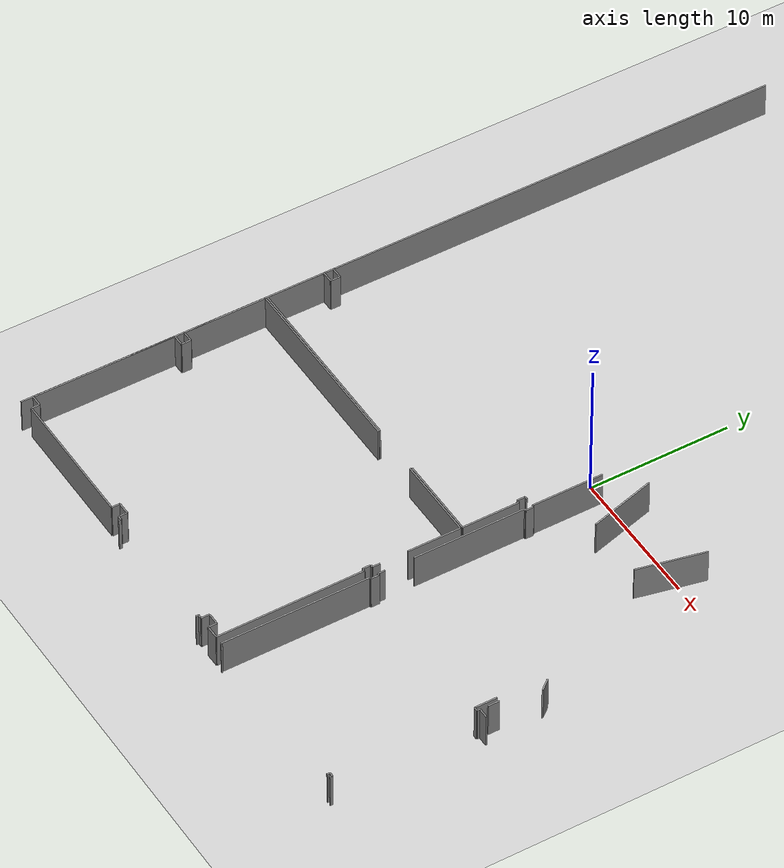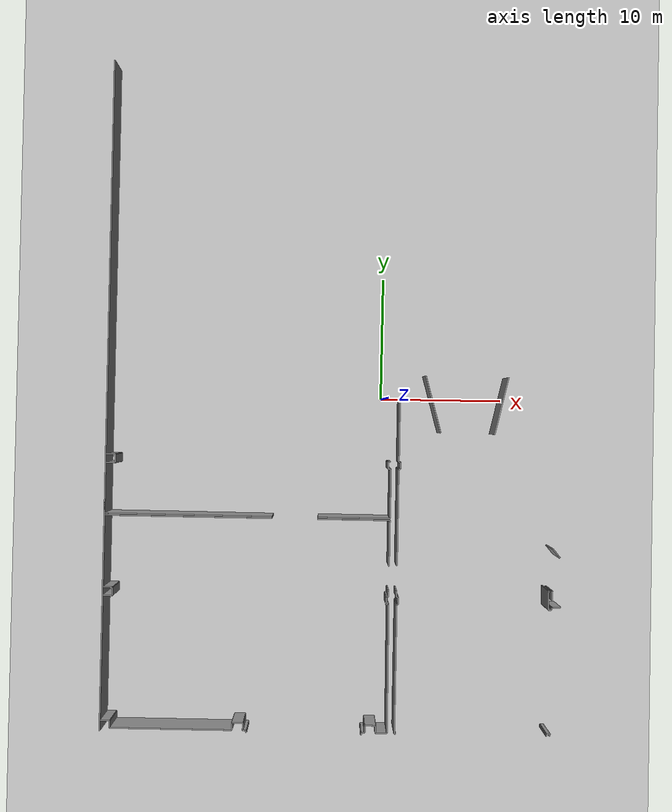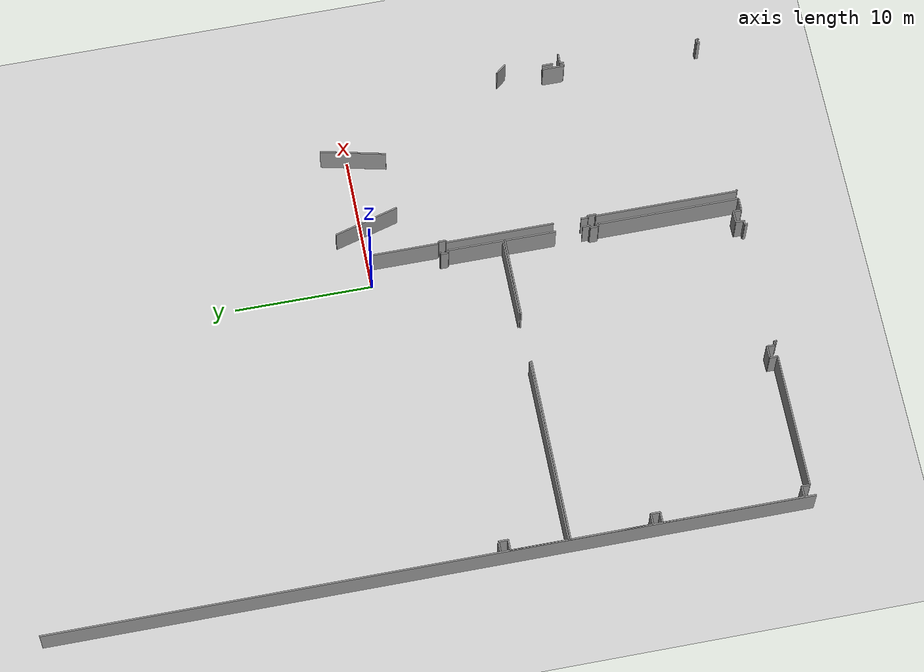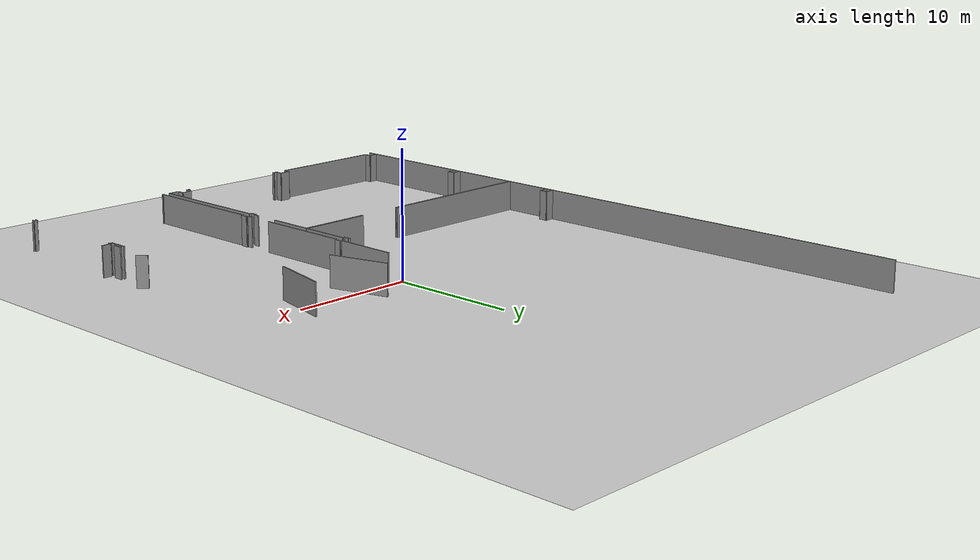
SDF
<sdf version="1.6">
 <world name="default">
  <model name="ground_plane">
   <static>1</static>
   <link name="link">
    <collision name="collision">
     <geometry><plane><normal>0 0 1</normal><size>100 100</size></plane></geometry>
     <surface><friction><ode><mu>100</mu><mu2>50</mu2></ode></friction></surface>
    </collision>
    <visual name="visual">
     <cast_shadows>0</cast_shadows>
     <geometry><plane><normal>0 0 1</normal><size>100 100</size></plane></geometry>
     <material>
      <script><uri>file://media/materials/scripts/gazebo.material</uri><name>Gazebo/Grey</name></script>
     </material>
    </visual>
   </link>
  </model>
  <model name="0510032322">
   <static>1</static>
   <link name="Wall_25">
    <collision name="Wall_25_Collision">
     <geometry><box><size>0.806026795631 0.1 2.5</size></box></geometry>
     <pose>0.403013397815 0 1.25 0 0 0</pose>
    </collision>
    <visual name="Wall_25_Visual">
     <pose>0.403013397815 0 1.25 0 0 0</pose>
     <geometry><box><size>0.806026795631 0.1 2.5</size></box></geometry>
     <material>
      <script><uri>file://media/materials/scripts/gazebo.material</uri><name>Gazebo/Grey</name></script>
      <ambient>1 1 1 1</ambient>
     </material>
    </visual>
    <pose>0.0 -32.2993342346 0 0 0 0.0</pose>
   </link>
   <link name="Wall_26">
    <collision name="Wall_26_Collision">
     <geometry><box><size>0.684424642841 0.1 2.5</size></box></geometry>
     <pose>0.342212321421 0 1.25 0 0 0</pose>
    </collision>
    <visual name="Wall_26_Visual">
     <pose>0.342212321421 0 1.25 0 0 0</pose>
     <geometry><box><size>0.684424642841 0.1 2.5</size></box></geometry>
     <material>
      <script><uri>file://media/materials/scripts/gazebo.material</uri><name>Gazebo/Grey</name></script>
      <ambient>1 1 1 1</ambient>
     </material>
    </visual>
    <pose>0.806026795631 -32.2993342346 0 0 0 -1.57079632679</pose>
   </link>
   <link name="Wall_27">
    <collision name="Wall_27_Collision">
     <geometry><box><size>0.801330261546 0.1 2.5</size></box></geometry>
     <pose>0.400665130773 0 1.25 0 0 0</pose>
    </collision>
    <visual name="Wall_27_Visual">
     <pose>0.400665130773 0 1.25 0 0 0</pose>
     <geometry><box><size>0.801330261546 0.1 2.5</size></box></geometry>
     <material>
      <script><uri>file://media/materials/scripts/gazebo.material</uri><name>Gazebo/Grey</name></script>
      <ambient>1 1 1 1</ambient>
     </material>
    </visual>
    <pose>0.806026795631 -32.9837588774 0 0 0 3.14159265359</pose>
   </link>
   <link name="Wall_28">
    <collision name="Wall_28_Collision">
     <geometry><box><size>4.13701186192 0.1 2.5</size></box></geometry>
     <pose>2.06850593096 0 1.25 0 0 0</pose>
    </collision>
    <visual name="Wall_28_Visual">
     <pose>2.06850593096 0 1.25 0 0 0</pose>
     <geometry><box><size>4.13701186192 0.1 2.5</size></box></geometry>
     <material>
      <script><uri>file://media/materials/scripts/gazebo.material</uri><name>Gazebo/Grey</name></script>
      <ambient>1 1 1 1</ambient>
     </material>
    </visual>
    <pose>0.00469653408478 -32.9837588774 0 0 0 -1.57079632679</pose>
   </link>
   <link name="Wall_29">
    <collision name="Wall_29_Collision">
     <geometry><box><size>13.6552683465 0.1 2.5</size></box></geometry>
     <pose>6.82763417323 0 1.25 0 0 0</pose>
    </collision>
    <visual name="Wall_29_Visual">
     <pose>6.82763417323 0 1.25 0 0 0</pose>
     <geometry><box><size>13.6552683465 0.1 2.5</size></box></geometry>
     <material>
      <script><uri>file://media/materials/scripts/gazebo.material</uri><name>Gazebo/Grey</name></script>
      <ambient>1 1 1 1</ambient>
     </material>
    </visual>
    <pose>0.00469653408478 -37.1207707393 0 0 0 -0.00216586695855</pose>
   </link>
   <link name="Wall_30">
    <collision name="Wall_30_Collision">
     <geometry><box><size>0.938164416773 0.1 2.5</size></box></geometry>
     <pose>0.469082208386 0 1.25 0 0 0</pose>
    </collision>
    <visual name="Wall_30_Visual">
     <pose>0.469082208386 0 1.25 0 0 0</pose>
     <geometry><box><size>0.938164416773 0.1 2.5</size></box></geometry>
     <material>
      <script><uri>file://media/materials/scripts/gazebo.material</uri><name>Gazebo/Grey</name></script>
      <ambient>1 1 1 1</ambient>
     </material>
    </visual>
    <pose>23.3180378642 -54.5016279203 0 0 0 3.14159265359</pose>
   </link>
   <link name="Wall_31">
    <collision name="Wall_31_Collision">
     <geometry><box><size>0.594301961755 0.1 2.5</size></box></geometry>
     <pose>0.297150980877 0 1.25 0 0 0</pose>
    </collision>
    <visual name="Wall_31_Visual">
     <pose>0.297150980877 0 1.25 0 0 0</pose>
     <geometry><box><size>0.594301961755 0.1 2.5</size></box></geometry>
     <material>
      <script><uri>file://media/materials/scripts/gazebo.material</uri><name>Gazebo/Grey</name></script>
      <ambient>1 1 1 1</ambient>
     </material>
    </visual>
    <pose>22.3798734474 -54.5016279203 0 0 0 1.57079632679</pose>
   </link>
   <link name="Wall_32">
    <collision name="Wall_32_Collision">
     <geometry><box><size>0.86733560544 0.1 2.5</size></box></geometry>
     <pose>0.43366780272 0 1.25 0 0 0</pose>
    </collision>
    <visual name="Wall_32_Visual">
     <pose>0.43366780272 0 1.25 0 0 0</pose>
     <geometry><box><size>0.86733560544 0.1 2.5</size></box></geometry>
     <material>
      <script><uri>file://media/materials/scripts/gazebo.material</uri><name>Gazebo/Grey</name></script>
      <ambient>1 1 1 1</ambient>
     </material>
    </visual>
    <pose>22.3798734474 -53.9073259585 0 0 0 3.14159265359</pose>
   </link>
   <link name="Wall_33">
    <collision name="Wall_33_Collision">
     <geometry><box><size>0.592651828158 0.1 2.5</size></box></geometry>
     <pose>0.296325914079 0 1.25 0 0 0</pose>
    </collision>
    <visual name="Wall_33_Visual">
     <pose>0.296325914079 0 1.25 0 0 0</pose>
     <geometry><box><size>0.592651828158 0.1 2.5</size></box></geometry>
     <material>
      <script><uri>file://media/materials/scripts/gazebo.material</uri><name>Gazebo/Grey</name></script>
      <ambient>1 1 1 1</ambient>
     </material>
    </visual>
    <pose>21.512537842 -53.9073259585 0 0 0 -1.57079632679</pose>
   </link>
   <link name="Wall_34">
    <collision name="Wall_34_Collision">
     <geometry><box><size>0.291692846671 0.1 2.5</size></box></geometry>
     <pose>0.145846423335 0 1.25 0 0 0</pose>
    </collision>
    <visual name="Wall_34_Visual">
     <pose>0.145846423335 0 1.25 0 0 0</pose>
     <geometry><box><size>0.291692846671 0.1 2.5</size></box></geometry>
     <material>
      <script><uri>file://media/materials/scripts/gazebo.material</uri><name>Gazebo/Grey</name></script>
      <ambient>1 1 1 1</ambient>
     </material>
    </visual>
    <pose>21.512537842 -54.4999777867 0 0 0 3.14159265359</pose>
   </link>
   <link name="Wall_35">
    <collision name="Wall_35_Collision">
     <geometry><box><size>0.195223497902 0.1 2.5</size></box></geometry>
     <pose>0.0976117489512 0 1.25 0 0 0</pose>
    </collision>
    <visual name="Wall_35_Visual">
     <pose>0.0976117489512 0 1.25 0 0 0</pose>
     <geometry><box><size>0.195223497902 0.1 2.5</size></box></geometry>
     <material>
      <script><uri>file://media/materials/scripts/gazebo.material</uri><name>Gazebo/Grey</name></script>
      <ambient>1 1 1 1</ambient>
     </material>
    </visual>
    <pose>21.2208449953 -54.4999777867 0 0 0 -1.57079632679</pose>
   </link>
   <link name="Wall_36">
    <collision name="Wall_36_Collision">
     <geometry><box><size>0.190907763879 0.1 2.5</size></box></geometry>
     <pose>0.0954538819393 0 1.25 0 0 0</pose>
    </collision>
    <visual name="Wall_36_Visual">
     <pose>0.0954538819393 0 1.25 0 0 0</pose>
     <geometry><box><size>0.190907763879 0.1 2.5</size></box></geometry>
     <material>
      <script><uri>file://media/materials/scripts/gazebo.material</uri><name>Gazebo/Grey</name></script>
      <ambient>1 1 1 1</ambient>
     </material>
    </visual>
    <pose>11.9015251042 -54.6952012846 0 0 0 1.57079632679</pose>
   </link>
   <link name="Wall_37">
    <collision name="Wall_37_Collision">
     <geometry><box><size>0.286361645818 0.1 2.5</size></box></geometry>
     <pose>0.143180822909 0 1.25 0 0 0</pose>
    </collision>
    <visual name="Wall_37_Visual">
     <pose>0.143180822909 0 1.25 0 0 0</pose>
     <geometry><box><size>0.286361645818 0.1 2.5</size></box></geometry>
     <material>
      <script><uri>file://media/materials/scripts/gazebo.material</uri><name>Gazebo/Grey</name></script>
      <ambient>1 1 1 1</ambient>
     </material>
    </visual>
    <pose>11.9015251042 -54.5042935207 0 0 0 3.14159265359</pose>
   </link>
   <link name="Wall_38">
    <collision name="Wall_38_Collision">
     <geometry><box><size>0.59760222895 0.1 2.5</size></box></geometry>
     <pose>0.298801114475 0 1.25 0 0 0</pose>
    </collision>
    <visual name="Wall_38_Visual">
     <pose>0.298801114475 0 1.25 0 0 0</pose>
     <geometry><box><size>0.59760222895 0.1 2.5</size></box></geometry>
     <material>
      <script><uri>file://media/materials/scripts/gazebo.material</uri><name>Gazebo/Grey</name></script>
      <ambient>1 1 1 1</ambient>
     </material>
    </visual>
    <pose>11.6151634584 -54.5042935207 0 0 0 1.57079632679</pose>
   </link>
   <link name="Wall_39">
    <collision name="Wall_39_Collision">
     <geometry><box><size>0.888025742084 0.1 2.5</size></box></geometry>
     <pose>0.444012871042 0 1.25 0 0 0</pose>
    </collision>
    <visual name="Wall_39_Visual">
     <pose>0.444012871042 0 1.25 0 0 0</pose>
     <geometry><box><size>0.888025742084 0.1 2.5</size></box></geometry>
     <material>
      <script><uri>file://media/materials/scripts/gazebo.material</uri><name>Gazebo/Grey</name></script>
      <ambient>1 1 1 1</ambient>
     </material>
    </visual>
    <pose>11.6151634584 -53.9066912917 0 0 0 3.14159265359</pose>
   </link>
   <link name="Wall_40">
    <collision name="Wall_40_Collision">
     <geometry><box><size>0.580973959622 0.1 2.5</size></box></geometry>
     <pose>0.290486979811 0 1.25 0 0 0</pose>
    </collision>
    <visual name="Wall_40_Visual">
     <pose>0.290486979811 0 1.25 0 0 0</pose>
     <geometry><box><size>0.580973959622 0.1 2.5</size></box></geometry>
     <material>
      <script><uri>file://media/materials/scripts/gazebo.material</uri><name>Gazebo/Grey</name></script>
      <ambient>1 1 1 1</ambient>
     </material>
    </visual>
    <pose>10.7271377163 -53.9066912917 0 0 0 -1.57079632679</pose>
   </link>
   <link name="Wall_41">
    <collision name="Wall_41_Collision">
     <geometry><box><size>9.91362185285 0.1 2.5</size></box></geometry>
     <pose>4.95681092642 0 1.25 0 0 0</pose>
    </collision>
    <visual name="Wall_41_Visual">
     <pose>4.95681092642 0 1.25 0 0 0</pose>
     <geometry><box><size>9.91362185285 0.1 2.5</size></box></geometry>
     <material>
      <script><uri>file://media/materials/scripts/gazebo.material</uri><name>Gazebo/Grey</name></script>
      <ambient>1 1 1 1</ambient>
     </material>
    </visual>
    <pose>10.7271377163 -54.4876652514 0 0 0 3.14159265359</pose>
   </link>
   <link name="Wall_42">
    <collision name="Wall_42_Collision">
     <geometry><box><size>0.579450759379 0.1 2.5</size></box></geometry>
     <pose>0.289725379689 0 1.25 0 0 0</pose>
    </collision>
    <visual name="Wall_42_Visual">
     <pose>0.289725379689 0 1.25 0 0 0</pose>
     <geometry><box><size>0.579450759379 0.1 2.5</size></box></geometry>
     <material>
      <script><uri>file://media/materials/scripts/gazebo.material</uri><name>Gazebo/Grey</name></script>
      <ambient>1 1 1 1</ambient>
     </material>
    </visual>
    <pose>0.813515863496 -54.4876652514 0 0 0 1.57079632679</pose>
   </link>
   <link name="Wall_43">
    <collision name="Wall_43_Collision">
     <geometry><box><size>0.800949461485 0.1 2.5</size></box></geometry>
     <pose>0.400474730743 0 1.25 0 0 0</pose>
    </collision>
    <visual name="Wall_43_Visual">
     <pose>0.400474730743 0 1.25 0 0 0</pose>
     <geometry><box><size>0.800949461485 0.1 2.5</size></box></geometry>
     <material>
      <script><uri>file://media/materials/scripts/gazebo.material</uri><name>Gazebo/Grey</name></script>
      <ambient>1 1 1 1</ambient>
     </material>
    </visual>
    <pose>0.813515863496 -53.908214492 0 0 0 3.14159265359</pose>
   </link>
   <link name="Wall_44">
    <collision name="Wall_44_Collision">
     <geometry><box><size>10.1210309527 0.1 2.5</size></box></geometry>
     <pose>5.06051547635 0 1.25 0 0 0</pose>
    </collision>
    <visual name="Wall_44_Visual">
     <pose>5.06051547635 0 1.25 0 0 0</pose>
     <geometry><box><size>10.1210309527 0.1 2.5</size></box></geometry>
     <material>
      <script><uri>file://media/materials/scripts/gazebo.material</uri><name>Gazebo/Grey</name></script>
      <ambient>1 1 1 1</ambient>
     </material>
    </visual>
    <pose>0.0125664020106 -53.908214492 0 0 0 1.57079632679</pose>
   </link>
   <link name="Wall_45">
    <collision name="Wall_45_Collision">
     <geometry><box><size>0.793079593559 0.1 2.5</size></box></geometry>
     <pose>0.39653979678 0 1.25 0 0 0</pose>
    </collision>
    <visual name="Wall_45_Visual">
     <pose>0.39653979678 0 1.25 0 0 0</pose>
     <geometry><box><size>0.793079593559 0.1 2.5</size></box></geometry>
     <material>
      <script><uri>file://media/materials/scripts/gazebo.material</uri><name>Gazebo/Grey</name></script>
      <ambient>1 1 1 1</ambient>
     </material>
    </visual>
    <pose>0.0125664020106 -43.7871835393 0 0 0 0.0</pose>
   </link>
   <link name="Wall_46">
    <collision name="Wall_46_Collision">
     <geometry><box><size>0.674904641318 0.1 2.5</size></box></geometry>
     <pose>0.337452320659 0 1.25 0 0 0</pose>
    </collision>
    <visual name="Wall_46_Visual">
     <pose>0.337452320659 0 1.25 0 0 0</pose>
     <geometry><box><size>0.674904641318 0.1 2.5</size></box></geometry>
     <material>
      <script><uri>file://media/materials/scripts/gazebo.material</uri><name>Gazebo/Grey</name></script>
      <ambient>1 1 1 1</ambient>
     </material>
    </visual>
    <pose>0.80564599557 -43.7871835393 0 0 0 1.57079632679</pose>
   </link>
   <link name="Wall_47">
    <collision name="Wall_47_Collision">
     <geometry><box><size>0.791048659901 0.1 2.5</size></box></geometry>
     <pose>0.395524329951 0 1.25 0 0 0</pose>
    </collision>
    <visual name="Wall_47_Visual">
     <pose>0.395524329951 0 1.25 0 0 0</pose>
     <geometry><box><size>0.791048659901 0.1 2.5</size></box></geometry>
     <material>
      <script><uri>file://media/materials/scripts/gazebo.material</uri><name>Gazebo/Grey</name></script>
      <ambient>1 1 1 1</ambient>
     </material>
    </visual>
    <pose>0.80564599557 -43.112278898 0 0 0 3.14159265359</pose>
   </link>
   <link name="Wall_48">
    <collision name="Wall_48_Collision">
     <geometry><box><size>5.85822813732 0.1 2.5</size></box></geometry>
     <pose>2.92911406866 0 1.25 0 0 0</pose>
    </collision>
    <visual name="Wall_48_Visual">
     <pose>2.92911406866 0 1.25 0 0 0</pose>
     <geometry><box><size>5.85822813732 0.1 2.5</size></box></geometry>
     <material>
      <script><uri>file://media/materials/scripts/gazebo.material</uri><name>Gazebo/Grey</name></script>
      <ambient>1 1 1 1</ambient>
     </material>
    </visual>
    <pose>0.0145973356689 -43.112278898 0 0 0 1.57079632679</pose>
   </link>
   <link name="Wall_49">
    <collision name="Wall_49_Collision">
     <geometry><box><size>13.6468587168 0.1 2.5</size></box></geometry>
     <pose>6.82342935842 0 1.25 0 0 0</pose>
    </collision>
    <visual name="Wall_49_Visual">
     <pose>6.82342935842 0 1.25 0 0 0</pose>
     <geometry><box><size>13.6468587168 0.1 2.5</size></box></geometry>
     <material>
      <script><uri>file://media/materials/scripts/gazebo.material</uri><name>Gazebo/Grey</name></script>
      <ambient>1 1 1 1</ambient>
     </material>
    </visual>
    <pose>0.0145973356689 -37.2540507606 0 0 0 0.0</pose>
   </link>
   <link name="Wall_50">
    <collision name="Wall_50_Collision">
     <geometry><box><size>5.89922761054 0.1 2.5</size></box></geometry>
     <pose>2.94961380527 0 1.25 0 0 0</pose>
    </collision>
    <visual name="Wall_50_Visual">
     <pose>2.94961380527 0 1.25 0 0 0</pose>
     <geometry><box><size>5.89922761054 0.1 2.5</size></box></geometry>
     <material>
      <script><uri>file://media/materials/scripts/gazebo.material</uri><name>Gazebo/Grey</name></script>
      <ambient>1 1 1 1</ambient>
     </material>
    </visual>
    <pose>17.3469659755 -37.2540507606 0 0 0 0.0</pose>
   </link>
   <link name="Wall_51">
    <collision name="Wall_51_Collision">
     <geometry><box><size>3.73907579825 0.1 2.5</size></box></geometry>
     <pose>1.86953789913 0 1.25 0 0 0</pose>
    </collision>
    <visual name="Wall_51_Visual">
     <pose>1.86953789913 0 1.25 0 0 0</pose>
     <geometry><box><size>3.73907579825 0.1 2.5</size></box></geometry>
     <material>
      <script><uri>file://media/materials/scripts/gazebo.material</uri><name>Gazebo/Grey</name></script>
      <ambient>1 1 1 1</ambient>
     </material>
    </visual>
    <pose>23.2461935861 -37.2540507606 0 0 0 -1.57079632679</pose>
   </link>
   <link name="Wall_52">
    <collision name="Wall_52_Collision">
     <geometry><box><size>0.529692884751 0.1 2.5</size></box></geometry>
     <pose>0.264846442375 0 1.25 0 0 0</pose>
    </collision>
    <visual name="Wall_52_Visual">
     <pose>0.264846442375 0 1.25 0 0 0</pose>
     <geometry><box><size>0.529692884751 0.1 2.5</size></box></geometry>
     <material>
      <script><uri>file://media/materials/scripts/gazebo.material</uri><name>Gazebo/Grey</name></script>
      <ambient>1 1 1 1</ambient>
     </material>
    </visual>
    <pose>23.2461935861 -42.9816644771 0 0 0 -1.57079632679</pose>
   </link>
   <link name="Wall_53">
    <collision name="Wall_53_Collision">
     <geometry><box><size>0.182022429124 0.1 2.5</size></box></geometry>
     <pose>0.0910112145618 0 1.25 0 0 0</pose>
    </collision>
    <visual name="Wall_53_Visual">
     <pose>0.0910112145618 0 1.25 0 0 0</pose>
     <geometry><box><size>0.182022429124 0.1 2.5</size></box></geometry>
     <material>
      <script><uri>file://media/materials/scripts/gazebo.material</uri><name>Gazebo/Grey</name></script>
      <ambient>1 1 1 1</ambient>
     </material>
    </visual>
    <pose>23.2461935861 -43.5113573618 0 0 0 3.14159265359</pose>
   </link>
   <link name="Wall_54">
    <collision name="Wall_54_Collision">
     <geometry><box><size>0.573357958404 0.1 2.5</size></box></geometry>
     <pose>0.286678979202 0 1.25 0 0 0</pose>
    </collision>
    <visual name="Wall_54_Visual">
     <pose>0.286678979202 0 1.25 0 0 0</pose>
     <geometry><box><size>0.573357958404 0.1 2.5</size></box></geometry>
     <material>
      <script><uri>file://media/materials/scripts/gazebo.material</uri><name>Gazebo/Grey</name></script>
      <ambient>1 1 1 1</ambient>
     </material>
    </visual>
    <pose>23.0641711569 -43.5113573618 0 0 0 -1.57079632679</pose>
   </link>
   <link name="Wall_55">
    <collision name="Wall_55_Collision">
     <geometry><box><size>0.195985098024 0.1 2.5</size></box></geometry>
     <pose>0.0979925490121 0 1.25 0 0 0</pose>
    </collision>
    <visual name="Wall_55_Visual">
     <pose>0.0979925490121 0 1.25 0 0 0</pose>
     <geometry><box><size>0.195985098024 0.1 2.5</size></box></geometry>
     <material>
      <script><uri>file://media/materials/scripts/gazebo.material</uri><name>Gazebo/Grey</name></script>
      <ambient>1 1 1 1</ambient>
     </material>
    </visual>
    <pose>23.0641711569 -44.0847153202 0 0 0 0.0</pose>
   </link>
   <link name="Wall_56">
    <collision name="Wall_56_Collision">
     <geometry><box><size>10.4170734085 0.1 2.5</size></box></geometry>
     <pose>5.20853670424 0 1.25 0 0 0</pose>
    </collision>
    <visual name="Wall_56_Visual">
     <pose>5.20853670424 0 1.25 0 0 0</pose>
     <geometry><box><size>10.4170734085 0.1 2.5</size></box></geometry>
     <material>
      <script><uri>file://media/materials/scripts/gazebo.material</uri><name>Gazebo/Grey</name></script>
      <ambient>1 1 1 1</ambient>
     </material>
    </visual>
    <pose>23.260156255 -44.0847153202 0 0 0 -1.56523988068</pose>
   </link>
   <link name="Wall_93">
    <collision name="Wall_93_Collision">
     <geometry><box><size>5.86520947177 0.1 2.5</size></box></geometry>
     <pose>2.93260473588 0 1.25 0 0 0</pose>
    </collision>
    <visual name="Wall_93_Visual">
     <pose>2.93260473588 0 1.25 0 0 0</pose>
     <geometry><box><size>5.86520947177 0.1 2.5</size></box></geometry>
     <material>
      <script><uri>file://media/materials/scripts/gazebo.material</uri><name>Gazebo/Grey</name></script>
      <ambient>1 1 1 1</ambient>
     </material>
    </visual>
    <pose>23.260156255 -37.1269904737 0 0 0 3.14159265359</pose>
   </link>
   <link name="Wall_101">
    <collision name="Wall_101_Collision">
     <geometry><box><size>0.194208031073 0.1 2.5</size></box></geometry>
     <pose>0.0971040155366 0 1.25 0 0 0</pose>
    </collision>
    <visual name="Wall_101_Visual">
     <pose>0.0971040155366 0 1.25 0 0 0</pose>
     <geometry><box><size>0.194208031073 0.1 2.5</size></box></geometry>
     <material>
      <script><uri>file://media/materials/scripts/gazebo.material</uri><name>Gazebo/Grey</name></script>
      <ambient>1 1 1 1</ambient>
     </material>
    </visual>
    <pose>23.2459397194 -32.5138516022 0 0 0 3.14159265359</pose>
   </link>
   <link name="Wall_102">
    <collision name="Wall_102_Collision">
     <geometry><box><size>0.57183475816 0.1 2.5</size></box></geometry>
     <pose>0.28591737908 0 1.25 0 0 0</pose>
    </collision>
    <visual name="Wall_102_Visual">
     <pose>0.28591737908 0 1.25 0 0 0</pose>
     <geometry><box><size>0.57183475816 0.1 2.5</size></box></geometry>
     <material>
      <script><uri>file://media/materials/scripts/gazebo.material</uri><name>Gazebo/Grey</name></script>
      <ambient>1 1 1 1</ambient>
     </material>
    </visual>
    <pose>23.0517316883 -32.5138516022 0 0 0 -1.57079632679</pose>
   </link>
   <link name="Wall_103">
    <collision name="Wall_103_Collision">
     <geometry><box><size>0.203981899304 0.1 2.5</size></box></geometry>
     <pose>0.101990949652 0 1.25 0 0 0</pose>
    </collision>
    <visual name="Wall_103_Visual">
     <pose>0.101990949652 0 1.25 0 0 0</pose>
     <geometry><box><size>0.203981899304 0.1 2.5</size></box></geometry>
     <material>
      <script><uri>file://media/materials/scripts/gazebo.material</uri><name>Gazebo/Grey</name></script>
      <ambient>1 1 1 1</ambient>
     </material>
    </visual>
    <pose>23.0517316883 -33.0856863604 0 0 0 0.0</pose>
   </link>
   <link name="Wall_104">
    <collision name="Wall_104_Collision">
     <geometry><box><size>4.04130655522 0.1 2.5</size></box></geometry>
     <pose>2.02065327761 0 1.25 0 0 0</pose>
    </collision>
    <visual name="Wall_104_Visual">
     <pose>2.02065327761 0 1.25 0 0 0</pose>
     <geometry><box><size>4.04130655522 0.1 2.5</size></box></geometry>
     <material>
      <script><uri>file://media/materials/scripts/gazebo.material</uri><name>Gazebo/Grey</name></script>
      <ambient>1 1 1 1</ambient>
     </material>
    </visual>
    <pose>23.2557135876 -33.0856863604 0 0 0 -1.56969701195</pose>
   </link>
   <link name="Wall_111">
    <collision name="Wall_111_Collision">
     <geometry><box><size>4.85428621968 0.1 2.5</size></box></geometry>
     <pose>2.42714310984 0 1.25 0 0 0</pose>
    </collision>
    <visual name="Wall_111_Visual">
     <pose>2.42714310984 0 1.25 0 0 0</pose>
     <geometry><box><size>4.85428621968 0.1 2.5</size></box></geometry>
     <material>
      <script><uri>file://media/materials/scripts/gazebo.material</uri><name>Gazebo/Grey</name></script>
      <ambient>1 1 1 1</ambient>
     </material>
    </visual>
    <pose>27.2612224951 -30.0792698793 0 0 0 1.84072698844</pose>
   </link>
   <link name="Wall_167">
    <collision name="Wall_167_Collision">
     <geometry><box><size>0.195604297963 0.1 2.5</size></box></geometry>
     <pose>0.0978021489817 0 1.25 0 0 0</pose>
    </collision>
    <visual name="Wall_167_Visual">
     <pose>0.0978021489817 0 1.25 0 0 0</pose>
     <geometry><box><size>0.195604297963 0.1 2.5</size></box></geometry>
     <material>
      <script><uri>file://media/materials/scripts/gazebo.material</uri><name>Gazebo/Grey</name></script>
      <ambient>1 1 1 1</ambient>
     </material>
    </visual>
    <pose>36.5447471805 -54.5089900548 0 0 0 1.57079632679</pose>
   </link>
   <link name="Wall_168">
    <collision name="Wall_168_Collision">
     <geometry><box><size>0.281538178379 0.1 2.5</size></box></geometry>
     <pose>0.14076908919 0 1.25 0 0 0</pose>
    </collision>
    <visual name="Wall_168_Visual">
     <pose>0.14076908919 0 1.25 0 0 0</pose>
     <geometry><box><size>0.281538178379 0.1 2.5</size></box></geometry>
     <material>
      <script><uri>file://media/materials/scripts/gazebo.material</uri><name>Gazebo/Grey</name></script>
      <ambient>1 1 1 1</ambient>
     </material>
    </visual>
    <pose>36.5447471805 -54.3133857568 0 0 0 3.14159265359</pose>
   </link>
   <link name="Wall_169">
    <collision name="Wall_169_Collision">
     <geometry><box><size>0.205124299487 0.1 2.5</size></box></geometry>
     <pose>0.102562149743 0 1.25 0 0 0</pose>
    </collision>
    <visual name="Wall_169_Visual">
     <pose>0.102562149743 0 1.25 0 0 0</pose>
     <geometry><box><size>0.205124299487 0.1 2.5</size></box></geometry>
     <material>
      <script><uri>file://media/materials/scripts/gazebo.material</uri><name>Gazebo/Grey</name></script>
      <ambient>1 1 1 1</ambient>
     </material>
    </visual>
    <pose>36.2632090021 -54.3133857568 0 0 0 -1.57079632679</pose>
   </link>
   <link name="Wall_170">
    <collision name="Wall_170_Collision">
     <geometry><box><size>0.111955217913 0.1 2.5</size></box></geometry>
     <pose>0.0559776089564 0 1.25 0 0 0</pose>
    </collision>
    <visual name="Wall_170_Visual">
     <pose>0.0559776089564 0 1.25 0 0 0</pose>
     <geometry><box><size>0.111955217913 0.1 2.5</size></box></geometry>
     <material>
      <script><uri>file://media/materials/scripts/gazebo.material</uri><name>Gazebo/Grey</name></script>
      <ambient>1 1 1 1</ambient>
     </material>
    </visual>
    <pose>24.028991578 -54.5185100563 0 0 0 3.14159265359</pose>
   </link>
   <link name="Wall_171">
    <collision name="Wall_171_Collision">
     <geometry><box><size>10.4191974004 0.1 2.5</size></box></geometry>
     <pose>5.2095987002 0 1.25 0 0 0</pose>
    </collision>
    <visual name="Wall_171_Visual">
     <pose>5.2095987002 0 1.25 0 0 0</pose>
     <geometry><box><size>10.4191974004 0.1 2.5</size></box></geometry>
     <material>
      <script><uri>file://media/materials/scripts/gazebo.material</uri><name>Gazebo/Grey</name></script>
      <ambient>1 1 1 1</ambient>
     </material>
    </visual>
    <pose>23.9170363601 -54.5185100563 0 0 0 1.57079632679</pose>
   </link>
   <link name="Wall_172">
    <collision name="Wall_172_Collision">
     <geometry><box><size>0.112462951327 0.1 2.5</size></box></geometry>
     <pose>0.0562314756637 0 1.25 0 0 0</pose>
    </collision>
    <visual name="Wall_172_Visual">
     <pose>0.0562314756637 0 1.25 0 0 0</pose>
     <geometry><box><size>0.112462951327 0.1 2.5</size></box></geometry>
     <material>
      <script><uri>file://media/materials/scripts/gazebo.material</uri><name>Gazebo/Grey</name></script>
      <ambient>1 1 1 1</ambient>
     </material>
    </visual>
    <pose>23.9170363601 -44.0993126559 0 0 0 0.0</pose>
   </link>
   <link name="Wall_173">
    <collision name="Wall_173_Collision">
     <geometry><box><size>0.602425696388 0.1 2.5</size></box></geometry>
     <pose>0.301212848194 0 1.25 0 0 0</pose>
    </collision>
    <visual name="Wall_173_Visual">
     <pose>0.301212848194 0 1.25 0 0 0</pose>
     <geometry><box><size>0.602425696388 0.1 2.5</size></box></geometry>
     <material>
      <script><uri>file://media/materials/scripts/gazebo.material</uri><name>Gazebo/Grey</name></script>
      <ambient>1 1 1 1</ambient>
     </material>
    </visual>
    <pose>24.0294993114 -44.0993126559 0 0 0 1.57079632679</pose>
   </link>
   <link name="Wall_174">
    <collision name="Wall_174_Collision">
     <geometry><box><size>0.13797655541 0.1 2.5</size></box></geometry>
     <pose>0.0689882777048 0 1.25 0 0 0</pose>
    </collision>
    <visual name="Wall_174_Visual">
     <pose>0.0689882777048 0 1.25 0 0 0</pose>
     <geometry><box><size>0.13797655541 0.1 2.5</size></box></geometry>
     <material>
      <script><uri>file://media/materials/scripts/gazebo.material</uri><name>Gazebo/Grey</name></script>
      <ambient>1 1 1 1</ambient>
     </material>
    </visual>
    <pose>24.0294993114 -43.4968869595 0 0 0 3.14159265359</pose>
   </link>
   <link name="Wall_175">
    <collision name="Wall_175_Collision">
     <geometry><box><size>0.50075208012 0.1 2.5</size></box></geometry>
     <pose>0.25037604006 0 1.25 0 0 0</pose>
    </collision>
    <visual name="Wall_175_Visual">
     <pose>0.25037604006 0 1.25 0 0 0</pose>
     <geometry><box><size>0.50075208012 0.1 2.5</size></box></geometry>
     <material>
      <script><uri>file://media/materials/scripts/gazebo.material</uri><name>Gazebo/Grey</name></script>
      <ambient>1 1 1 1</ambient>
     </material>
    </visual>
    <pose>23.891522756 -43.4968869595 0 0 0 1.57079632679</pose>
   </link>
   <link name="Wall_176">
    <collision name="Wall_176_Collision">
     <geometry><box><size>7.87405672652 0.1 2.5</size></box></geometry>
     <pose>3.93702836326 0 1.25 0 0 0</pose>
    </collision>
    <visual name="Wall_176_Visual">
     <pose>3.93702836326 0 1.25 0 0 0</pose>
     <geometry><box><size>7.87405672652 0.1 2.5</size></box></geometry>
     <material>
      <script><uri>file://media/materials/scripts/gazebo.material</uri><name>Gazebo/Grey</name></script>
      <ambient>1 1 1 1</ambient>
     </material>
    </visual>
    <pose>23.891522756 -40.9625356207 0 0 0 1.57079632679</pose>
   </link>
   <link name="Wall_177">
    <collision name="Wall_177_Collision">
     <geometry><box><size>0.145211756567 0.1 2.5</size></box></geometry>
     <pose>0.0726058782836 0 1.25 0 0 0</pose>
    </collision>
    <visual name="Wall_177_Visual">
     <pose>0.0726058782836 0 1.25 0 0 0</pose>
     <geometry><box><size>0.145211756567 0.1 2.5</size></box></geometry>
     <material>
      <script><uri>file://media/materials/scripts/gazebo.material</uri><name>Gazebo/Grey</name></script>
      <ambient>1 1 1 1</ambient>
     </material>
    </visual>
    <pose>23.891522756 -33.0884788942 0 0 0 0.0</pose>
   </link>
   <link name="Wall_178">
    <collision name="Wall_178_Collision">
     <geometry><box><size>0.56485342371 0.1 2.5</size></box></geometry>
     <pose>0.282426711855 0 1.25 0 0 0</pose>
    </collision>
    <visual name="Wall_178_Visual">
     <pose>0.282426711855 0 1.25 0 0 0</pose>
     <geometry><box><size>0.56485342371 0.1 2.5</size></box></geometry>
     <material>
      <script><uri>file://media/materials/scripts/gazebo.material</uri><name>Gazebo/Grey</name></script>
      <ambient>1 1 1 1</ambient>
     </material>
    </visual>
    <pose>24.0367345125 -33.0884788942 0 0 0 1.57079632679</pose>
   </link>
   <link name="Wall_179">
    <collision name="Wall_179_Collision">
     <geometry><box><size>0.137849622056 0.1 2.5</size></box></geometry>
     <pose>0.068924811028 0 1.25 0 0 0</pose>
    </collision>
    <visual name="Wall_179_Visual">
     <pose>0.068924811028 0 1.25 0 0 0</pose>
     <geometry><box><size>0.137849622056 0.1 2.5</size></box></geometry>
     <material>
      <script><uri>file://media/materials/scripts/gazebo.material</uri><name>Gazebo/Grey</name></script>
      <ambient>1 1 1 1</ambient>
     </material>
    </visual>
    <pose>24.0367345125 -32.5236254704 0 0 0 3.14159265359</pose>
   </link>
   <link name="Wall_180">
    <collision name="Wall_180_Collision">
     <geometry><box><size>5.05842107601 0.1 2.5</size></box></geometry>
     <pose>2.52921053801 0 1.25 0 0 0</pose>
    </collision>
    <visual name="Wall_180_Visual">
     <pose>2.52921053801 0 1.25 0 0 0</pose>
     <geometry><box><size>5.05842107601 0.1 2.5</size></box></geometry>
     <material>
      <script><uri>file://media/materials/scripts/gazebo.material</uri><name>Gazebo/Grey</name></script>
      <ambient>1 1 1 1</ambient>
     </material>
    </visual>
    <pose>23.8988848905 -32.5236254704 0 0 0 1.57079632679</pose>
   </link>
   <link name="Wall_185">
    <collision name="Wall_185_Collision">
     <geometry><box><size>4.79698125447 0.1 2.5</size></box></geometry>
     <pose>2.39849062724 0 1.25 0 0 0</pose>
    </collision>
    <visual name="Wall_185_Visual">
     <pose>2.39849062724 0 1.25 0 0 0</pose>
     <geometry><box><size>4.79698125447 0.1 2.5</size></box></geometry>
     <material>
      <script><uri>file://media/materials/scripts/gazebo.material</uri><name>Gazebo/Grey</name></script>
      <ambient>1 1 1 1</ambient>
     </material>
    </visual>
    <pose>31.6598439989 -30.1220464195 0 0 0 1.34629815814</pose>
   </link>
   <link name="Wall_191">
    <collision name="Wall_191_Collision">
     <geometry><box><size>1.56077251639 0.1 2.5</size></box></geometry>
     <pose>0.780386258195 0 1.25 0 0 0</pose>
    </collision>
    <visual name="Wall_191_Visual">
     <pose>0.780386258195 0 1.25 0 0 0</pose>
     <geometry><box><size>1.56077251639 0.1 2.5</size></box></geometry>
     <material>
      <script><uri>file://media/materials/scripts/gazebo.material</uri><name>Gazebo/Grey</name></script>
      <ambient>1 1 1 1</ambient>
     </material>
    </visual>
    <pose>36.2644783356 -42.7152313678 0 0 0 -1.57079632679</pose>
   </link>
   <link name="Wall_192">
    <collision name="Wall_192_Collision">
     <geometry><box><size>0.271002710027 0.1 2.5</size></box></geometry>
     <pose>0.135501355014 0 1.25 0 0 0</pose>
    </collision>
    <visual name="Wall_192_Visual">
     <pose>0.135501355014 0 1.25 0 0 0</pose>
     <geometry><box><size>0.271002710027 0.1 2.5</size></box></geometry>
     <material>
      <script><uri>file://media/materials/scripts/gazebo.material</uri><name>Gazebo/Grey</name></script>
      <ambient>1 1 1 1</ambient>
     </material>
    </visual>
    <pose>36.2644783356 -44.2760038842 0 0 0 0.0</pose>
   </link>
   <link name="Wall_193">
    <collision name="Wall_193_Collision">
     <geometry><box><size>0.208678433389 0.1 2.5</size></box></geometry>
     <pose>0.104339216694 0 1.25 0 0 0</pose>
    </collision>
    <visual name="Wall_193_Visual">
     <pose>0.104339216694 0 1.25 0 0 0</pose>
     <geometry><box><size>0.208678433389 0.1 2.5</size></box></geometry>
     <material>
      <script><uri>file://media/materials/scripts/gazebo.material</uri><name>Gazebo/Grey</name></script>
      <ambient>1 1 1 1</ambient>
     </material>
    </visual>
    <pose>36.5354810457 -44.2760038842 0 0 0 1.57079632679</pose>
   </link>
   <link name="Wall_194">
    <collision name="Wall_194_Collision">
     <geometry><box><size>0.734436384176 0.1 2.5</size></box></geometry>
     <pose>0.367218192088 0 1.25 0 0 0</pose>
    </collision>
    <visual name="Wall_194_Visual">
     <pose>0.367218192088 0 1.25 0 0 0</pose>
     <geometry><box><size>0.734436384176 0.1 2.5</size></box></geometry>
     <material>
      <script><uri>file://media/materials/scripts/gazebo.material</uri><name>Gazebo/Grey</name></script>
      <ambient>1 1 1 1</ambient>
     </material>
    </visual>
    <pose>36.5354810457 -44.0673254508 0 0 0 0.0</pose>
   </link>
   <link name="Wall_200">
    <collision name="Wall_200_Collision">
     <geometry><box><size>0.795618260632 0.1 2.5</size></box></geometry>
     <pose>0.397809130316 0 1.25 0 0 0</pose>
    </collision>
    <visual name="Wall_200_Visual">
     <pose>0.397809130316 0 1.25 0 0 0</pose>
     <geometry><box><size>0.795618260632 0.1 2.5</size></box></geometry>
     <material>
      <script><uri>file://media/materials/scripts/gazebo.material</uri><name>Gazebo/Grey</name></script>
      <ambient>1 1 1 1</ambient>
     </material>
    </visual>
    <pose>36.5632794501 -43.5310320316 0 0 0 1.57079632679</pose>
   </link>
   <link name="Wall_201">
    <collision name="Wall_201_Collision">
     <geometry><box><size>0.934194135686 0.1 2.5</size></box></geometry>
     <pose>0.467097067843 0 1.25 0 0 0</pose>
    </collision>
    <visual name="Wall_201_Visual">
     <pose>0.467097067843 0 1.25 0 0 0</pose>
     <geometry><box><size>0.934194135686 0.1 2.5</size></box></geometry>
     <material>
      <script><uri>file://media/materials/scripts/gazebo.material</uri><name>Gazebo/Grey</name></script>
      <ambient>1 1 1 1</ambient>
     </material>
    </visual>
    <pose>36.5632794501 -39.3399465611 0 0 0 -0.882686346011</pose>
   </link>
   <link name="Wall_237">
    <collision name="Wall_237_Collision">
     <geometry><box><size>54.77072663 0.1 2.5</size></box></geometry>
     <pose>27.385363315 0 1.25 0 0 0</pose>
    </collision>
    <visual name="Wall_237_Visual">
     <pose>27.385363315 0 1.25 0 0 0</pose>
     <geometry><box><size>54.77072663 0.1 2.5</size></box></geometry>
     <material>
      <script><uri>file://media/materials/scripts/gazebo.material</uri><name>Gazebo/Grey</name></script>
      <ambient>1 1 1 1</ambient>
     </material>
    </visual>
    <pose>0.0 -54.77072663 0 0 0 1.57079632679</pose>
   </link>
   <pose>-22.5 27.37072663 0 0 0 0</pose>
  </model>
 </world>
</sdf>
